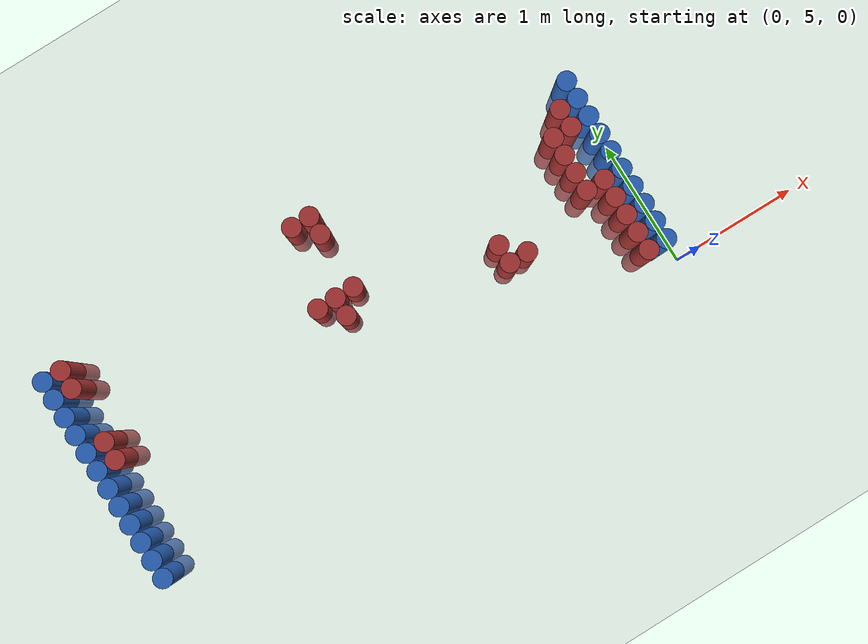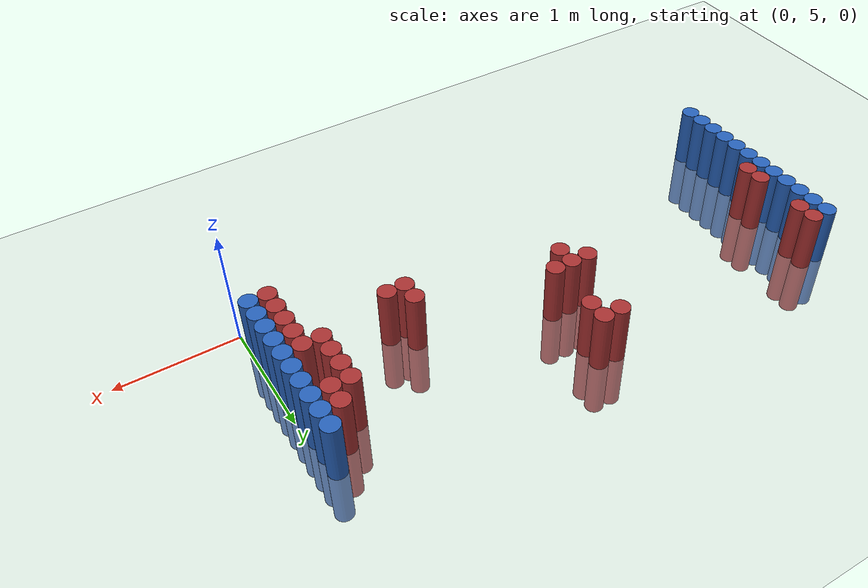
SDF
<sdf version="1.6">
 <world name="default">
  <model name="ground_plane">
   <static>1</static>
   <link name="link">
    <collision name="collision">
     <geometry><plane><normal>0 0 1</normal><size>100 100</size></plane></geometry>
     <surface><friction><ode><mu>100</mu><mu2>50</mu2></ode></friction></surface>
    </collision>
    <visual name="visual">
     <cast_shadows>0</cast_shadows>
     <geometry><plane><normal>0 0 1</normal><size>100 100</size></plane></geometry>
     <material>
      <script><uri>file://media/materials/scripts/gazebo.material</uri><name>Gazebo/Grey</name></script>
     </material>
    </visual>
   </link>
  </model>
  <model name="unit_cylinder_95">
   <static>1</static>
   <pose>-4.425000 5.025000 0.000000 0.000000 0.000000 0.000000</pose>
   <link name="link">
    <inertial>
     <mass>1</mass>
     <inertia><ixx>0.145833</ixx><ixy>0</ixy><ixz>0</ixz><iyy>0.145833</iyy><iyz>0</iyz><izz>0.125</izz></inertia>
    </inertial>
    <collision name="collision">
     <geometry><cylinder><radius>0.075000</radius><length>1</length></cylinder></geometry>
    </collision>
    <visual name="visual">
     <geometry><cylinder><radius>0.075000</radius><length>1</length></cylinder></geometry>
     <material>
      <ambient>0.152000 0.379000 0.720000 1</ambient>
      <diffuse>0.152000 0.379000 0.720000 1</diffuse>
     </material>
     <material>
      <script><name>Gazebo/Grey</name><uri>file://media/materials/scripts/gazebo.material</uri></script>
     </material>
    </visual>
   </link>
  </model>
  <model name="unit_cylinder_96">
   <static>1</static>
   <pose>-4.425000 5.175000 0.000000 0.000000 0.000000 0.000000</pose>
   <link name="link">
    <inertial>
     <mass>1</mass>
     <inertia><ixx>0.145833</ixx><ixy>0</ixy><ixz>0</ixz><iyy>0.145833</iyy><iyz>0</iyz><izz>0.125</izz></inertia>
    </inertial>
    <collision name="collision">
     <geometry><cylinder><radius>0.075000</radius><length>1</length></cylinder></geometry>
    </collision>
    <visual name="visual">
     <geometry><cylinder><radius>0.075000</radius><length>1</length></cylinder></geometry>
     <material>
      <ambient>0.152000 0.379000 0.720000 1</ambient>
      <diffuse>0.152000 0.379000 0.720000 1</diffuse>
     </material>
     <material>
      <script><name>Gazebo/Grey</name><uri>file://media/materials/scripts/gazebo.material</uri></script>
     </material>
    </visual>
   </link>
  </model>
  <model name="unit_cylinder_97">
   <static>1</static>
   <pose>-4.425000 5.325000 0.000000 0.000000 0.000000 0.000000</pose>
   <link name="link">
    <inertial>
     <mass>1</mass>
     <inertia><ixx>0.145833</ixx><ixy>0</ixy><ixz>0</ixz><iyy>0.145833</iyy><iyz>0</iyz><izz>0.125</izz></inertia>
    </inertial>
    <collision name="collision">
     <geometry><cylinder><radius>0.075000</radius><length>1</length></cylinder></geometry>
    </collision>
    <visual name="visual">
     <geometry><cylinder><radius>0.075000</radius><length>1</length></cylinder></geometry>
     <material>
      <ambient>0.152000 0.379000 0.720000 1</ambient>
      <diffuse>0.152000 0.379000 0.720000 1</diffuse>
     </material>
     <material>
      <script><name>Gazebo/Grey</name><uri>file://media/materials/scripts/gazebo.material</uri></script>
     </material>
    </visual>
   </link>
  </model>
  <model name="unit_cylinder_98">
   <static>1</static>
   <pose>-4.425000 5.475000 0.000000 0.000000 0.000000 0.000000</pose>
   <link name="link">
    <inertial>
     <mass>1</mass>
     <inertia><ixx>0.145833</ixx><ixy>0</ixy><ixz>0</ixz><iyy>0.145833</iyy><iyz>0</iyz><izz>0.125</izz></inertia>
    </inertial>
    <collision name="collision">
     <geometry><cylinder><radius>0.075000</radius><length>1</length></cylinder></geometry>
    </collision>
    <visual name="visual">
     <geometry><cylinder><radius>0.075000</radius><length>1</length></cylinder></geometry>
     <material>
      <ambient>0.152000 0.379000 0.720000 1</ambient>
      <diffuse>0.152000 0.379000 0.720000 1</diffuse>
     </material>
     <material>
      <script><name>Gazebo/Grey</name><uri>file://media/materials/scripts/gazebo.material</uri></script>
     </material>
    </visual>
   </link>
  </model>
  <model name="unit_cylinder_99">
   <static>1</static>
   <pose>-4.425000 5.625000 0.000000 0.000000 0.000000 0.000000</pose>
   <link name="link">
    <inertial>
     <mass>1</mass>
     <inertia><ixx>0.145833</ixx><ixy>0</ixy><ixz>0</ixz><iyy>0.145833</iyy><iyz>0</iyz><izz>0.125</izz></inertia>
    </inertial>
    <collision name="collision">
     <geometry><cylinder><radius>0.075000</radius><length>1</length></cylinder></geometry>
    </collision>
    <visual name="visual">
     <geometry><cylinder><radius>0.075000</radius><length>1</length></cylinder></geometry>
     <material>
      <ambient>0.152000 0.379000 0.720000 1</ambient>
      <diffuse>0.152000 0.379000 0.720000 1</diffuse>
     </material>
     <material>
      <script><name>Gazebo/Grey</name><uri>file://media/materials/scripts/gazebo.material</uri></script>
     </material>
    </visual>
   </link>
  </model>
  <model name="unit_cylinder_100">
   <static>1</static>
   <pose>-4.425000 5.775000 0.000000 0.000000 0.000000 0.000000</pose>
   <link name="link">
    <inertial>
     <mass>1</mass>
     <inertia><ixx>0.145833</ixx><ixy>0</ixy><ixz>0</ixz><iyy>0.145833</iyy><iyz>0</iyz><izz>0.125</izz></inertia>
    </inertial>
    <collision name="collision">
     <geometry><cylinder><radius>0.075000</radius><length>1</length></cylinder></geometry>
    </collision>
    <visual name="visual">
     <geometry><cylinder><radius>0.075000</radius><length>1</length></cylinder></geometry>
     <material>
      <ambient>0.152000 0.379000 0.720000 1</ambient>
      <diffuse>0.152000 0.379000 0.720000 1</diffuse>
     </material>
     <material>
      <script><name>Gazebo/Grey</name><uri>file://media/materials/scripts/gazebo.material</uri></script>
     </material>
    </visual>
   </link>
  </model>
  <model name="unit_cylinder_101">
   <static>1</static>
   <pose>-4.425000 5.925000 0.000000 0.000000 0.000000 0.000000</pose>
   <link name="link">
    <inertial>
     <mass>1</mass>
     <inertia><ixx>0.145833</ixx><ixy>0</ixy><ixz>0</ixz><iyy>0.145833</iyy><iyz>0</iyz><izz>0.125</izz></inertia>
    </inertial>
    <collision name="collision">
     <geometry><cylinder><radius>0.075000</radius><length>1</length></cylinder></geometry>
    </collision>
    <visual name="visual">
     <geometry><cylinder><radius>0.075000</radius><length>1</length></cylinder></geometry>
     <material>
      <ambient>0.152000 0.379000 0.720000 1</ambient>
      <diffuse>0.152000 0.379000 0.720000 1</diffuse>
     </material>
     <material>
      <script><name>Gazebo/Grey</name><uri>file://media/materials/scripts/gazebo.material</uri></script>
     </material>
    </visual>
   </link>
  </model>
  <model name="unit_cylinder_102">
   <static>1</static>
   <pose>-4.425000 6.075000 0.000000 0.000000 0.000000 0.000000</pose>
   <link name="link">
    <inertial>
     <mass>1</mass>
     <inertia><ixx>0.145833</ixx><ixy>0</ixy><ixz>0</ixz><iyy>0.145833</iyy><iyz>0</iyz><izz>0.125</izz></inertia>
    </inertial>
    <collision name="collision">
     <geometry><cylinder><radius>0.075000</radius><length>1</length></cylinder></geometry>
    </collision>
    <visual name="visual">
     <geometry><cylinder><radius>0.075000</radius><length>1</length></cylinder></geometry>
     <material>
      <ambient>0.152000 0.379000 0.720000 1</ambient>
      <diffuse>0.152000 0.379000 0.720000 1</diffuse>
     </material>
     <material>
      <script><name>Gazebo/Grey</name><uri>file://media/materials/scripts/gazebo.material</uri></script>
     </material>
    </visual>
   </link>
  </model>
  <model name="unit_cylinder_103">
   <static>1</static>
   <pose>-4.425000 6.225000 0.000000 0.000000 0.000000 0.000000</pose>
   <link name="link">
    <inertial>
     <mass>1</mass>
     <inertia><ixx>0.145833</ixx><ixy>0</ixy><ixz>0</ixz><iyy>0.145833</iyy><iyz>0</iyz><izz>0.125</izz></inertia>
    </inertial>
    <collision name="collision">
     <geometry><cylinder><radius>0.075000</radius><length>1</length></cylinder></geometry>
    </collision>
    <visual name="visual">
     <geometry><cylinder><radius>0.075000</radius><length>1</length></cylinder></geometry>
     <material>
      <ambient>0.152000 0.379000 0.720000 1</ambient>
      <diffuse>0.152000 0.379000 0.720000 1</diffuse>
     </material>
     <material>
      <script><name>Gazebo/Grey</name><uri>file://media/materials/scripts/gazebo.material</uri></script>
     </material>
    </visual>
   </link>
  </model>
  <model name="unit_cylinder_104">
   <static>1</static>
   <pose>-4.425000 6.375000 0.000000 0.000000 0.000000 0.000000</pose>
   <link name="link">
    <inertial>
     <mass>1</mass>
     <inertia><ixx>0.145833</ixx><ixy>0</ixy><ixz>0</ixz><iyy>0.145833</iyy><iyz>0</iyz><izz>0.125</izz></inertia>
    </inertial>
    <collision name="collision">
     <geometry><cylinder><radius>0.075000</radius><length>1</length></cylinder></geometry>
    </collision>
    <visual name="visual">
     <geometry><cylinder><radius>0.075000</radius><length>1</length></cylinder></geometry>
     <material>
      <ambient>0.152000 0.379000 0.720000 1</ambient>
      <diffuse>0.152000 0.379000 0.720000 1</diffuse>
     </material>
     <material>
      <script><name>Gazebo/Grey</name><uri>file://media/materials/scripts/gazebo.material</uri></script>
     </material>
    </visual>
   </link>
  </model>
  <model name="unit_cylinder_105">
   <static>1</static>
   <pose>-4.425000 6.525000 0.000000 0.000000 0.000000 0.000000</pose>
   <link name="link">
    <inertial>
     <mass>1</mass>
     <inertia><ixx>0.145833</ixx><ixy>0</ixy><ixz>0</ixz><iyy>0.145833</iyy><iyz>0</iyz><izz>0.125</izz></inertia>
    </inertial>
    <collision name="collision">
     <geometry><cylinder><radius>0.075000</radius><length>1</length></cylinder></geometry>
    </collision>
    <visual name="visual">
     <geometry><cylinder><radius>0.075000</radius><length>1</length></cylinder></geometry>
     <material>
      <ambient>0.152000 0.379000 0.720000 1</ambient>
      <diffuse>0.152000 0.379000 0.720000 1</diffuse>
     </material>
     <material>
      <script><name>Gazebo/Grey</name><uri>file://media/materials/scripts/gazebo.material</uri></script>
     </material>
    </visual>
   </link>
  </model>
  <model name="unit_cylinder_106">
   <static>1</static>
   <pose>-4.425000 6.675000 0.000000 0.000000 0.000000 0.000000</pose>
   <link name="link">
    <inertial>
     <mass>1</mass>
     <inertia><ixx>0.145833</ixx><ixy>0</ixy><ixz>0</ixz><iyy>0.145833</iyy><iyz>0</iyz><izz>0.125</izz></inertia>
    </inertial>
    <collision name="collision">
     <geometry><cylinder><radius>0.075000</radius><length>1</length></cylinder></geometry>
    </collision>
    <visual name="visual">
     <geometry><cylinder><radius>0.075000</radius><length>1</length></cylinder></geometry>
     <material>
      <ambient>0.152000 0.379000 0.720000 1</ambient>
      <diffuse>0.152000 0.379000 0.720000 1</diffuse>
     </material>
     <material>
      <script><name>Gazebo/Grey</name><uri>file://media/materials/scripts/gazebo.material</uri></script>
     </material>
    </visual>
   </link>
  </model>
  <model name="unit_cylinder_126">
   <static>1</static>
   <pose>-4.275000 5.925000 0.000000 0.000000 0.000000 0.000000</pose>
   <link name="link">
    <inertial>
     <mass>1</mass>
     <inertia><ixx>0.145833</ixx><ixy>0</ixy><ixz>0</ixz><iyy>0.145833</iyy><iyz>0</iyz><izz>0.125</izz></inertia>
    </inertial>
    <collision name="collision">
     <geometry><cylinder><radius>0.075000</radius><length>1</length></cylinder></geometry>
    </collision>
    <visual name="visual">
     <geometry><cylinder><radius>0.075000</radius><length>1</length></cylinder></geometry>
     <material>
      <ambient>0.648000 0.192000 0.192000 1</ambient>
      <diffuse>0.648000 0.192000 0.192000 1</diffuse>
     </material>
     <material>
      <script><name>Gazebo/Grey</name><uri>file://media/materials/scripts/gazebo.material</uri></script>
     </material>
    </visual>
   </link>
  </model>
  <model name="unit_cylinder_127">
   <static>1</static>
   <pose>-4.275000 6.075000 0.000000 0.000000 0.000000 0.000000</pose>
   <link name="link">
    <inertial>
     <mass>1</mass>
     <inertia><ixx>0.145833</ixx><ixy>0</ixy><ixz>0</ixz><iyy>0.145833</iyy><iyz>0</iyz><izz>0.125</izz></inertia>
    </inertial>
    <collision name="collision">
     <geometry><cylinder><radius>0.075000</radius><length>1</length></cylinder></geometry>
    </collision>
    <visual name="visual">
     <geometry><cylinder><radius>0.075000</radius><length>1</length></cylinder></geometry>
     <material>
      <ambient>0.648000 0.192000 0.192000 1</ambient>
      <diffuse>0.648000 0.192000 0.192000 1</diffuse>
     </material>
     <material>
      <script><name>Gazebo/Grey</name><uri>file://media/materials/scripts/gazebo.material</uri></script>
     </material>
    </visual>
   </link>
  </model>
  <model name="unit_cylinder_128">
   <static>1</static>
   <pose>-4.275000 6.525000 0.000000 0.000000 0.000000 0.000000</pose>
   <link name="link">
    <inertial>
     <mass>1</mass>
     <inertia><ixx>0.145833</ixx><ixy>0</ixy><ixz>0</ixz><iyy>0.145833</iyy><iyz>0</iyz><izz>0.125</izz></inertia>
    </inertial>
    <collision name="collision">
     <geometry><cylinder><radius>0.075000</radius><length>1</length></cylinder></geometry>
    </collision>
    <visual name="visual">
     <geometry><cylinder><radius>0.075000</radius><length>1</length></cylinder></geometry>
     <material>
      <ambient>0.648000 0.192000 0.192000 1</ambient>
      <diffuse>0.648000 0.192000 0.192000 1</diffuse>
     </material>
     <material>
      <script><name>Gazebo/Grey</name><uri>file://media/materials/scripts/gazebo.material</uri></script>
     </material>
    </visual>
   </link>
  </model>
  <model name="unit_cylinder_129">
   <static>1</static>
   <pose>-4.275000 6.675000 0.000000 0.000000 0.000000 0.000000</pose>
   <link name="link">
    <inertial>
     <mass>1</mass>
     <inertia><ixx>0.145833</ixx><ixy>0</ixy><ixz>0</ixz><iyy>0.145833</iyy><iyz>0</iyz><izz>0.125</izz></inertia>
    </inertial>
    <collision name="collision">
     <geometry><cylinder><radius>0.075000</radius><length>1</length></cylinder></geometry>
    </collision>
    <visual name="visual">
     <geometry><cylinder><radius>0.075000</radius><length>1</length></cylinder></geometry>
     <material>
      <ambient>0.648000 0.192000 0.192000 1</ambient>
      <diffuse>0.648000 0.192000 0.192000 1</diffuse>
     </material>
     <material>
      <script><name>Gazebo/Grey</name><uri>file://media/materials/scripts/gazebo.material</uri></script>
     </material>
    </visual>
   </link>
  </model>
  <model name="unit_cylinder_188">
   <static>1</static>
   <pose>-2.475000 6.075000 0.000000 0.000000 0.000000 0.000000</pose>
   <link name="link">
    <inertial>
     <mass>1</mass>
     <inertia><ixx>0.145833</ixx><ixy>0</ixy><ixz>0</ixz><iyy>0.145833</iyy><iyz>0</iyz><izz>0.125</izz></inertia>
    </inertial>
    <collision name="collision">
     <geometry><cylinder><radius>0.075000</radius><length>1</length></cylinder></geometry>
    </collision>
    <visual name="visual">
     <geometry><cylinder><radius>0.075000</radius><length>1</length></cylinder></geometry>
     <material>
      <ambient>0.648000 0.192000 0.192000 1</ambient>
      <diffuse>0.648000 0.192000 0.192000 1</diffuse>
     </material>
     <material>
      <script><name>Gazebo/Grey</name><uri>file://media/materials/scripts/gazebo.material</uri></script>
     </material>
    </visual>
   </link>
  </model>
  <model name="unit_cylinder_189">
   <static>1</static>
   <pose>-2.325000 5.925000 0.000000 0.000000 0.000000 0.000000</pose>
   <link name="link">
    <inertial>
     <mass>1</mass>
     <inertia><ixx>0.145833</ixx><ixy>0</ixy><ixz>0</ixz><iyy>0.145833</iyy><iyz>0</iyz><izz>0.125</izz></inertia>
    </inertial>
    <collision name="collision">
     <geometry><cylinder><radius>0.075000</radius><length>1</length></cylinder></geometry>
    </collision>
    <visual name="visual">
     <geometry><cylinder><radius>0.075000</radius><length>1</length></cylinder></geometry>
     <material>
      <ambient>0.648000 0.192000 0.192000 1</ambient>
      <diffuse>0.648000 0.192000 0.192000 1</diffuse>
     </material>
     <material>
      <script><name>Gazebo/Grey</name><uri>file://media/materials/scripts/gazebo.material</uri></script>
     </material>
    </visual>
   </link>
  </model>
  <model name="unit_cylinder_190">
   <static>1</static>
   <pose>-2.325000 6.075000 0.000000 0.000000 0.000000 0.000000</pose>
   <link name="link">
    <inertial>
     <mass>1</mass>
     <inertia><ixx>0.145833</ixx><ixy>0</ixy><ixz>0</ixz><iyy>0.145833</iyy><iyz>0</iyz><izz>0.125</izz></inertia>
    </inertial>
    <collision name="collision">
     <geometry><cylinder><radius>0.075000</radius><length>1</length></cylinder></geometry>
    </collision>
    <visual name="visual">
     <geometry><cylinder><radius>0.075000</radius><length>1</length></cylinder></geometry>
     <material>
      <ambient>0.648000 0.192000 0.192000 1</ambient>
      <diffuse>0.648000 0.192000 0.192000 1</diffuse>
     </material>
     <material>
      <script><name>Gazebo/Grey</name><uri>file://media/materials/scripts/gazebo.material</uri></script>
     </material>
    </visual>
   </link>
  </model>
  <model name="unit_cylinder_191">
   <static>1</static>
   <pose>-2.325000 6.675000 0.000000 0.000000 0.000000 0.000000</pose>
   <link name="link">
    <inertial>
     <mass>1</mass>
     <inertia><ixx>0.145833</ixx><ixy>0</ixy><ixz>0</ixz><iyy>0.145833</iyy><iyz>0</iyz><izz>0.125</izz></inertia>
    </inertial>
    <collision name="collision">
     <geometry><cylinder><radius>0.075000</radius><length>1</length></cylinder></geometry>
    </collision>
    <visual name="visual">
     <geometry><cylinder><radius>0.075000</radius><length>1</length></cylinder></geometry>
     <material>
      <ambient>0.648000 0.192000 0.192000 1</ambient>
      <diffuse>0.648000 0.192000 0.192000 1</diffuse>
     </material>
     <material>
      <script><name>Gazebo/Grey</name><uri>file://media/materials/scripts/gazebo.material</uri></script>
     </material>
    </visual>
   </link>
  </model>
  <model name="unit_cylinder_192">
   <static>1</static>
   <pose>-2.175000 6.075000 0.000000 0.000000 0.000000 0.000000</pose>
   <link name="link">
    <inertial>
     <mass>1</mass>
     <inertia><ixx>0.145833</ixx><ixy>0</ixy><ixz>0</ixz><iyy>0.145833</iyy><iyz>0</iyz><izz>0.125</izz></inertia>
    </inertial>
    <collision name="collision">
     <geometry><cylinder><radius>0.075000</radius><length>1</length></cylinder></geometry>
    </collision>
    <visual name="visual">
     <geometry><cylinder><radius>0.075000</radius><length>1</length></cylinder></geometry>
     <material>
      <ambient>0.648000 0.192000 0.192000 1</ambient>
      <diffuse>0.648000 0.192000 0.192000 1</diffuse>
     </material>
     <material>
      <script><name>Gazebo/Grey</name><uri>file://media/materials/scripts/gazebo.material</uri></script>
     </material>
    </visual>
   </link>
  </model>
  <model name="unit_cylinder_193">
   <static>1</static>
   <pose>-2.175000 6.525000 0.000000 0.000000 0.000000 0.000000</pose>
   <link name="link">
    <inertial>
     <mass>1</mass>
     <inertia><ixx>0.145833</ixx><ixy>0</ixy><ixz>0</ixz><iyy>0.145833</iyy><iyz>0</iyz><izz>0.125</izz></inertia>
    </inertial>
    <collision name="collision">
     <geometry><cylinder><radius>0.075000</radius><length>1</length></cylinder></geometry>
    </collision>
    <visual name="visual">
     <geometry><cylinder><radius>0.075000</radius><length>1</length></cylinder></geometry>
     <material>
      <ambient>0.648000 0.192000 0.192000 1</ambient>
      <diffuse>0.648000 0.192000 0.192000 1</diffuse>
     </material>
     <material>
      <script><name>Gazebo/Grey</name><uri>file://media/materials/scripts/gazebo.material</uri></script>
     </material>
    </visual>
   </link>
  </model>
  <model name="unit_cylinder_194">
   <static>1</static>
   <pose>-2.175000 6.675000 0.000000 0.000000 0.000000 0.000000</pose>
   <link name="link">
    <inertial>
     <mass>1</mass>
     <inertia><ixx>0.145833</ixx><ixy>0</ixy><ixz>0</ixz><iyy>0.145833</iyy><iyz>0</iyz><izz>0.125</izz></inertia>
    </inertial>
    <collision name="collision">
     <geometry><cylinder><radius>0.075000</radius><length>1</length></cylinder></geometry>
    </collision>
    <visual name="visual">
     <geometry><cylinder><radius>0.075000</radius><length>1</length></cylinder></geometry>
     <material>
      <ambient>0.648000 0.192000 0.192000 1</ambient>
      <diffuse>0.648000 0.192000 0.192000 1</diffuse>
     </material>
     <material>
      <script><name>Gazebo/Grey</name><uri>file://media/materials/scripts/gazebo.material</uri></script>
     </material>
    </visual>
   </link>
  </model>
  <model name="unit_cylinder_209">
   <static>1</static>
   <pose>-1.125000 5.625000 0.000000 0.000000 0.000000 0.000000</pose>
   <link name="link">
    <inertial>
     <mass>1</mass>
     <inertia><ixx>0.145833</ixx><ixy>0</ixy><ixz>0</ixz><iyy>0.145833</iyy><iyz>0</iyz><izz>0.125</izz></inertia>
    </inertial>
    <collision name="collision">
     <geometry><cylinder><radius>0.075000</radius><length>1</length></cylinder></geometry>
    </collision>
    <visual name="visual">
     <geometry><cylinder><radius>0.075000</radius><length>1</length></cylinder></geometry>
     <material>
      <ambient>0.648000 0.192000 0.192000 1</ambient>
      <diffuse>0.648000 0.192000 0.192000 1</diffuse>
     </material>
     <material>
      <script><name>Gazebo/Grey</name><uri>file://media/materials/scripts/gazebo.material</uri></script>
     </material>
    </visual>
   </link>
  </model>
  <model name="unit_cylinder_210">
   <static>1</static>
   <pose>-1.125000 5.775000 0.000000 0.000000 0.000000 0.000000</pose>
   <link name="link">
    <inertial>
     <mass>1</mass>
     <inertia><ixx>0.145833</ixx><ixy>0</ixy><ixz>0</ixz><iyy>0.145833</iyy><iyz>0</iyz><izz>0.125</izz></inertia>
    </inertial>
    <collision name="collision">
     <geometry><cylinder><radius>0.075000</radius><length>1</length></cylinder></geometry>
    </collision>
    <visual name="visual">
     <geometry><cylinder><radius>0.075000</radius><length>1</length></cylinder></geometry>
     <material>
      <ambient>0.648000 0.192000 0.192000 1</ambient>
      <diffuse>0.648000 0.192000 0.192000 1</diffuse>
     </material>
     <material>
      <script><name>Gazebo/Grey</name><uri>file://media/materials/scripts/gazebo.material</uri></script>
     </material>
    </visual>
   </link>
  </model>
  <model name="unit_cylinder_214">
   <static>1</static>
   <pose>-0.975000 5.625000 0.000000 0.000000 0.000000 0.000000</pose>
   <link name="link">
    <inertial>
     <mass>1</mass>
     <inertia><ixx>0.145833</ixx><ixy>0</ixy><ixz>0</ixz><iyy>0.145833</iyy><iyz>0</iyz><izz>0.125</izz></inertia>
    </inertial>
    <collision name="collision">
     <geometry><cylinder><radius>0.075000</radius><length>1</length></cylinder></geometry>
    </collision>
    <visual name="visual">
     <geometry><cylinder><radius>0.075000</radius><length>1</length></cylinder></geometry>
     <material>
      <ambient>0.648000 0.192000 0.192000 1</ambient>
      <diffuse>0.648000 0.192000 0.192000 1</diffuse>
     </material>
     <material>
      <script><name>Gazebo/Grey</name><uri>file://media/materials/scripts/gazebo.material</uri></script>
     </material>
    </visual>
   </link>
  </model>
  <model name="unit_cylinder_227">
   <static>1</static>
   <pose>-0.375000 5.775000 0.000000 0.000000 0.000000 0.000000</pose>
   <link name="link">
    <inertial>
     <mass>1</mass>
     <inertia><ixx>0.145833</ixx><ixy>0</ixy><ixz>0</ixz><iyy>0.145833</iyy><iyz>0</iyz><izz>0.125</izz></inertia>
    </inertial>
    <collision name="collision">
     <geometry><cylinder><radius>0.075000</radius><length>1</length></cylinder></geometry>
    </collision>
    <visual name="visual">
     <geometry><cylinder><radius>0.075000</radius><length>1</length></cylinder></geometry>
     <material>
      <ambient>0.648000 0.192000 0.192000 1</ambient>
      <diffuse>0.648000 0.192000 0.192000 1</diffuse>
     </material>
     <material>
      <script><name>Gazebo/Grey</name><uri>file://media/materials/scripts/gazebo.material</uri></script>
     </material>
    </visual>
   </link>
  </model>
  <model name="unit_cylinder_228">
   <static>1</static>
   <pose>-0.375000 5.925000 0.000000 0.000000 0.000000 0.000000</pose>
   <link name="link">
    <inertial>
     <mass>1</mass>
     <inertia><ixx>0.145833</ixx><ixy>0</ixy><ixz>0</ixz><iyy>0.145833</iyy><iyz>0</iyz><izz>0.125</izz></inertia>
    </inertial>
    <collision name="collision">
     <geometry><cylinder><radius>0.075000</radius><length>1</length></cylinder></geometry>
    </collision>
    <visual name="visual">
     <geometry><cylinder><radius>0.075000</radius><length>1</length></cylinder></geometry>
     <material>
      <ambient>0.648000 0.192000 0.192000 1</ambient>
      <diffuse>0.648000 0.192000 0.192000 1</diffuse>
     </material>
     <material>
      <script><name>Gazebo/Grey</name><uri>file://media/materials/scripts/gazebo.material</uri></script>
     </material>
    </visual>
   </link>
  </model>
  <model name="unit_cylinder_229">
   <static>1</static>
   <pose>-0.375000 6.075000 0.000000 0.000000 0.000000 0.000000</pose>
   <link name="link">
    <inertial>
     <mass>1</mass>
     <inertia><ixx>0.145833</ixx><ixy>0</ixy><ixz>0</ixz><iyy>0.145833</iyy><iyz>0</iyz><izz>0.125</izz></inertia>
    </inertial>
    <collision name="collision">
     <geometry><cylinder><radius>0.075000</radius><length>1</length></cylinder></geometry>
    </collision>
    <visual name="visual">
     <geometry><cylinder><radius>0.075000</radius><length>1</length></cylinder></geometry>
     <material>
      <ambient>0.648000 0.192000 0.192000 1</ambient>
      <diffuse>0.648000 0.192000 0.192000 1</diffuse>
     </material>
     <material>
      <script><name>Gazebo/Grey</name><uri>file://media/materials/scripts/gazebo.material</uri></script>
     </material>
    </visual>
   </link>
  </model>
  <model name="unit_cylinder_230">
   <static>1</static>
   <pose>-0.375000 6.225000 0.000000 0.000000 0.000000 0.000000</pose>
   <link name="link">
    <inertial>
     <mass>1</mass>
     <inertia><ixx>0.145833</ixx><ixy>0</ixy><ixz>0</ixz><iyy>0.145833</iyy><iyz>0</iyz><izz>0.125</izz></inertia>
    </inertial>
    <collision name="collision">
     <geometry><cylinder><radius>0.075000</radius><length>1</length></cylinder></geometry>
    </collision>
    <visual name="visual">
     <geometry><cylinder><radius>0.075000</radius><length>1</length></cylinder></geometry>
     <material>
      <ambient>0.648000 0.192000 0.192000 1</ambient>
      <diffuse>0.648000 0.192000 0.192000 1</diffuse>
     </material>
     <material>
      <script><name>Gazebo/Grey</name><uri>file://media/materials/scripts/gazebo.material</uri></script>
     </material>
    </visual>
   </link>
  </model>
  <model name="unit_cylinder_237">
   <static>1</static>
   <pose>-0.225000 5.175000 0.000000 0.000000 0.000000 0.000000</pose>
   <link name="link">
    <inertial>
     <mass>1</mass>
     <inertia><ixx>0.145833</ixx><ixy>0</ixy><ixz>0</ixz><iyy>0.145833</iyy><iyz>0</iyz><izz>0.125</izz></inertia>
    </inertial>
    <collision name="collision">
     <geometry><cylinder><radius>0.075000</radius><length>1</length></cylinder></geometry>
    </collision>
    <visual name="visual">
     <geometry><cylinder><radius>0.075000</radius><length>1</length></cylinder></geometry>
     <material>
      <ambient>0.648000 0.192000 0.192000 1</ambient>
      <diffuse>0.648000 0.192000 0.192000 1</diffuse>
     </material>
     <material>
      <script><name>Gazebo/Grey</name><uri>file://media/materials/scripts/gazebo.material</uri></script>
     </material>
    </visual>
   </link>
  </model>
  <model name="unit_cylinder_238">
   <static>1</static>
   <pose>-0.225000 5.325000 0.000000 0.000000 0.000000 0.000000</pose>
   <link name="link">
    <inertial>
     <mass>1</mass>
     <inertia><ixx>0.145833</ixx><ixy>0</ixy><ixz>0</ixz><iyy>0.145833</iyy><iyz>0</iyz><izz>0.125</izz></inertia>
    </inertial>
    <collision name="collision">
     <geometry><cylinder><radius>0.075000</radius><length>1</length></cylinder></geometry>
    </collision>
    <visual name="visual">
     <geometry><cylinder><radius>0.075000</radius><length>1</length></cylinder></geometry>
     <material>
      <ambient>0.648000 0.192000 0.192000 1</ambient>
      <diffuse>0.648000 0.192000 0.192000 1</diffuse>
     </material>
     <material>
      <script><name>Gazebo/Grey</name><uri>file://media/materials/scripts/gazebo.material</uri></script>
     </material>
    </visual>
   </link>
  </model>
  <model name="unit_cylinder_239">
   <static>1</static>
   <pose>-0.225000 5.475000 0.000000 0.000000 0.000000 0.000000</pose>
   <link name="link">
    <inertial>
     <mass>1</mass>
     <inertia><ixx>0.145833</ixx><ixy>0</ixy><ixz>0</ixz><iyy>0.145833</iyy><iyz>0</iyz><izz>0.125</izz></inertia>
    </inertial>
    <collision name="collision">
     <geometry><cylinder><radius>0.075000</radius><length>1</length></cylinder></geometry>
    </collision>
    <visual name="visual">
     <geometry><cylinder><radius>0.075000</radius><length>1</length></cylinder></geometry>
     <material>
      <ambient>0.648000 0.192000 0.192000 1</ambient>
      <diffuse>0.648000 0.192000 0.192000 1</diffuse>
     </material>
     <material>
      <script><name>Gazebo/Grey</name><uri>file://media/materials/scripts/gazebo.material</uri></script>
     </material>
    </visual>
   </link>
  </model>
  <model name="unit_cylinder_240">
   <static>1</static>
   <pose>-0.225000 5.625000 0.000000 0.000000 0.000000 0.000000</pose>
   <link name="link">
    <inertial>
     <mass>1</mass>
     <inertia><ixx>0.145833</ixx><ixy>0</ixy><ixz>0</ixz><iyy>0.145833</iyy><iyz>0</iyz><izz>0.125</izz></inertia>
    </inertial>
    <collision name="collision">
     <geometry><cylinder><radius>0.075000</radius><length>1</length></cylinder></geometry>
    </collision>
    <visual name="visual">
     <geometry><cylinder><radius>0.075000</radius><length>1</length></cylinder></geometry>
     <material>
      <ambient>0.648000 0.192000 0.192000 1</ambient>
      <diffuse>0.648000 0.192000 0.192000 1</diffuse>
     </material>
     <material>
      <script><name>Gazebo/Grey</name><uri>file://media/materials/scripts/gazebo.material</uri></script>
     </material>
    </visual>
   </link>
  </model>
  <model name="unit_cylinder_241">
   <static>1</static>
   <pose>-0.225000 5.775000 0.000000 0.000000 0.000000 0.000000</pose>
   <link name="link">
    <inertial>
     <mass>1</mass>
     <inertia><ixx>0.145833</ixx><ixy>0</ixy><ixz>0</ixz><iyy>0.145833</iyy><iyz>0</iyz><izz>0.125</izz></inertia>
    </inertial>
    <collision name="collision">
     <geometry><cylinder><radius>0.075000</radius><length>1</length></cylinder></geometry>
    </collision>
    <visual name="visual">
     <geometry><cylinder><radius>0.075000</radius><length>1</length></cylinder></geometry>
     <material>
      <ambient>0.648000 0.192000 0.192000 1</ambient>
      <diffuse>0.648000 0.192000 0.192000 1</diffuse>
     </material>
     <material>
      <script><name>Gazebo/Grey</name><uri>file://media/materials/scripts/gazebo.material</uri></script>
     </material>
    </visual>
   </link>
  </model>
  <model name="unit_cylinder_242">
   <static>1</static>
   <pose>-0.225000 6.225000 0.000000 0.000000 0.000000 0.000000</pose>
   <link name="link">
    <inertial>
     <mass>1</mass>
     <inertia><ixx>0.145833</ixx><ixy>0</ixy><ixz>0</ixz><iyy>0.145833</iyy><iyz>0</iyz><izz>0.125</izz></inertia>
    </inertial>
    <collision name="collision">
     <geometry><cylinder><radius>0.075000</radius><length>1</length></cylinder></geometry>
    </collision>
    <visual name="visual">
     <geometry><cylinder><radius>0.075000</radius><length>1</length></cylinder></geometry>
     <material>
      <ambient>0.648000 0.192000 0.192000 1</ambient>
      <diffuse>0.648000 0.192000 0.192000 1</diffuse>
     </material>
     <material>
      <script><name>Gazebo/Grey</name><uri>file://media/materials/scripts/gazebo.material</uri></script>
     </material>
    </visual>
   </link>
  </model>
  <model name="unit_cylinder_243">
   <static>1</static>
   <pose>-0.225000 6.375000 0.000000 0.000000 0.000000 0.000000</pose>
   <link name="link">
    <inertial>
     <mass>1</mass>
     <inertia><ixx>0.145833</ixx><ixy>0</ixy><ixz>0</ixz><iyy>0.145833</iyy><iyz>0</iyz><izz>0.125</izz></inertia>
    </inertial>
    <collision name="collision">
     <geometry><cylinder><radius>0.075000</radius><length>1</length></cylinder></geometry>
    </collision>
    <visual name="visual">
     <geometry><cylinder><radius>0.075000</radius><length>1</length></cylinder></geometry>
     <material>
      <ambient>0.648000 0.192000 0.192000 1</ambient>
      <diffuse>0.648000 0.192000 0.192000 1</diffuse>
     </material>
     <material>
      <script><name>Gazebo/Grey</name><uri>file://media/materials/scripts/gazebo.material</uri></script>
     </material>
    </visual>
   </link>
  </model>
  <model name="unit_cylinder_253">
   <static>1</static>
   <pose>-0.075000 5.175000 0.000000 0.000000 0.000000 0.000000</pose>
   <link name="link">
    <inertial>
     <mass>1</mass>
     <inertia><ixx>0.145833</ixx><ixy>0</ixy><ixz>0</ixz><iyy>0.145833</iyy><iyz>0</iyz><izz>0.125</izz></inertia>
    </inertial>
    <collision name="collision">
     <geometry><cylinder><radius>0.075000</radius><length>1</length></cylinder></geometry>
    </collision>
    <visual name="visual">
     <geometry><cylinder><radius>0.075000</radius><length>1</length></cylinder></geometry>
     <material>
      <ambient>0.152000 0.379000 0.720000 1</ambient>
      <diffuse>0.152000 0.379000 0.720000 1</diffuse>
     </material>
     <material>
      <script><name>Gazebo/Grey</name><uri>file://media/materials/scripts/gazebo.material</uri></script>
     </material>
    </visual>
   </link>
  </model>
  <model name="unit_cylinder_254">
   <static>1</static>
   <pose>-0.075000 5.325000 0.000000 0.000000 0.000000 0.000000</pose>
   <link name="link">
    <inertial>
     <mass>1</mass>
     <inertia><ixx>0.145833</ixx><ixy>0</ixy><ixz>0</ixz><iyy>0.145833</iyy><iyz>0</iyz><izz>0.125</izz></inertia>
    </inertial>
    <collision name="collision">
     <geometry><cylinder><radius>0.075000</radius><length>1</length></cylinder></geometry>
    </collision>
    <visual name="visual">
     <geometry><cylinder><radius>0.075000</radius><length>1</length></cylinder></geometry>
     <material>
      <ambient>0.152000 0.379000 0.720000 1</ambient>
      <diffuse>0.152000 0.379000 0.720000 1</diffuse>
     </material>
     <material>
      <script><name>Gazebo/Grey</name><uri>file://media/materials/scripts/gazebo.material</uri></script>
     </material>
    </visual>
   </link>
  </model>
  <model name="unit_cylinder_255">
   <static>1</static>
   <pose>-0.075000 5.475000 0.000000 0.000000 0.000000 0.000000</pose>
   <link name="link">
    <inertial>
     <mass>1</mass>
     <inertia><ixx>0.145833</ixx><ixy>0</ixy><ixz>0</ixz><iyy>0.145833</iyy><iyz>0</iyz><izz>0.125</izz></inertia>
    </inertial>
    <collision name="collision">
     <geometry><cylinder><radius>0.075000</radius><length>1</length></cylinder></geometry>
    </collision>
    <visual name="visual">
     <geometry><cylinder><radius>0.075000</radius><length>1</length></cylinder></geometry>
     <material>
      <ambient>0.152000 0.379000 0.720000 1</ambient>
      <diffuse>0.152000 0.379000 0.720000 1</diffuse>
     </material>
     <material>
      <script><name>Gazebo/Grey</name><uri>file://media/materials/scripts/gazebo.material</uri></script>
     </material>
    </visual>
   </link>
  </model>
  <model name="unit_cylinder_256">
   <static>1</static>
   <pose>-0.075000 5.625000 0.000000 0.000000 0.000000 0.000000</pose>
   <link name="link">
    <inertial>
     <mass>1</mass>
     <inertia><ixx>0.145833</ixx><ixy>0</ixy><ixz>0</ixz><iyy>0.145833</iyy><iyz>0</iyz><izz>0.125</izz></inertia>
    </inertial>
    <collision name="collision">
     <geometry><cylinder><radius>0.075000</radius><length>1</length></cylinder></geometry>
    </collision>
    <visual name="visual">
     <geometry><cylinder><radius>0.075000</radius><length>1</length></cylinder></geometry>
     <material>
      <ambient>0.152000 0.379000 0.720000 1</ambient>
      <diffuse>0.152000 0.379000 0.720000 1</diffuse>
     </material>
     <material>
      <script><name>Gazebo/Grey</name><uri>file://media/materials/scripts/gazebo.material</uri></script>
     </material>
    </visual>
   </link>
  </model>
  <model name="unit_cylinder_257">
   <static>1</static>
   <pose>-0.075000 5.775000 0.000000 0.000000 0.000000 0.000000</pose>
   <link name="link">
    <inertial>
     <mass>1</mass>
     <inertia><ixx>0.145833</ixx><ixy>0</ixy><ixz>0</ixz><iyy>0.145833</iyy><iyz>0</iyz><izz>0.125</izz></inertia>
    </inertial>
    <collision name="collision">
     <geometry><cylinder><radius>0.075000</radius><length>1</length></cylinder></geometry>
    </collision>
    <visual name="visual">
     <geometry><cylinder><radius>0.075000</radius><length>1</length></cylinder></geometry>
     <material>
      <ambient>0.152000 0.379000 0.720000 1</ambient>
      <diffuse>0.152000 0.379000 0.720000 1</diffuse>
     </material>
     <material>
      <script><name>Gazebo/Grey</name><uri>file://media/materials/scripts/gazebo.material</uri></script>
     </material>
    </visual>
   </link>
  </model>
  <model name="unit_cylinder_258">
   <static>1</static>
   <pose>-0.075000 5.925000 0.000000 0.000000 0.000000 0.000000</pose>
   <link name="link">
    <inertial>
     <mass>1</mass>
     <inertia><ixx>0.145833</ixx><ixy>0</ixy><ixz>0</ixz><iyy>0.145833</iyy><iyz>0</iyz><izz>0.125</izz></inertia>
    </inertial>
    <collision name="collision">
     <geometry><cylinder><radius>0.075000</radius><length>1</length></cylinder></geometry>
    </collision>
    <visual name="visual">
     <geometry><cylinder><radius>0.075000</radius><length>1</length></cylinder></geometry>
     <material>
      <ambient>0.152000 0.379000 0.720000 1</ambient>
      <diffuse>0.152000 0.379000 0.720000 1</diffuse>
     </material>
     <material>
      <script><name>Gazebo/Grey</name><uri>file://media/materials/scripts/gazebo.material</uri></script>
     </material>
    </visual>
   </link>
  </model>
  <model name="unit_cylinder_259">
   <static>1</static>
   <pose>-0.075000 6.075000 0.000000 0.000000 0.000000 0.000000</pose>
   <link name="link">
    <inertial>
     <mass>1</mass>
     <inertia><ixx>0.145833</ixx><ixy>0</ixy><ixz>0</ixz><iyy>0.145833</iyy><iyz>0</iyz><izz>0.125</izz></inertia>
    </inertial>
    <collision name="collision">
     <geometry><cylinder><radius>0.075000</radius><length>1</length></cylinder></geometry>
    </collision>
    <visual name="visual">
     <geometry><cylinder><radius>0.075000</radius><length>1</length></cylinder></geometry>
     <material>
      <ambient>0.152000 0.379000 0.720000 1</ambient>
      <diffuse>0.152000 0.379000 0.720000 1</diffuse>
     </material>
     <material>
      <script><name>Gazebo/Grey</name><uri>file://media/materials/scripts/gazebo.material</uri></script>
     </material>
    </visual>
   </link>
  </model>
  <model name="unit_cylinder_260">
   <static>1</static>
   <pose>-0.075000 6.225000 0.000000 0.000000 0.000000 0.000000</pose>
   <link name="link">
    <inertial>
     <mass>1</mass>
     <inertia><ixx>0.145833</ixx><ixy>0</ixy><ixz>0</ixz><iyy>0.145833</iyy><iyz>0</iyz><izz>0.125</izz></inertia>
    </inertial>
    <collision name="collision">
     <geometry><cylinder><radius>0.075000</radius><length>1</length></cylinder></geometry>
    </collision>
    <visual name="visual">
     <geometry><cylinder><radius>0.075000</radius><length>1</length></cylinder></geometry>
     <material>
      <ambient>0.152000 0.379000 0.720000 1</ambient>
      <diffuse>0.152000 0.379000 0.720000 1</diffuse>
     </material>
     <material>
      <script><name>Gazebo/Grey</name><uri>file://media/materials/scripts/gazebo.material</uri></script>
     </material>
    </visual>
   </link>
  </model>
  <model name="unit_cylinder_261">
   <static>1</static>
   <pose>-0.075000 6.375000 0.000000 0.000000 0.000000 0.000000</pose>
   <link name="link">
    <inertial>
     <mass>1</mass>
     <inertia><ixx>0.145833</ixx><ixy>0</ixy><ixz>0</ixz><iyy>0.145833</iyy><iyz>0</iyz><izz>0.125</izz></inertia>
    </inertial>
    <collision name="collision">
     <geometry><cylinder><radius>0.075000</radius><length>1</length></cylinder></geometry>
    </collision>
    <visual name="visual">
     <geometry><cylinder><radius>0.075000</radius><length>1</length></cylinder></geometry>
     <material>
      <ambient>0.152000 0.379000 0.720000 1</ambient>
      <diffuse>0.152000 0.379000 0.720000 1</diffuse>
     </material>
     <material>
      <script><name>Gazebo/Grey</name><uri>file://media/materials/scripts/gazebo.material</uri></script>
     </material>
    </visual>
   </link>
  </model>
  <model name="unit_cylinder_262">
   <static>1</static>
   <pose>-0.075000 6.525000 0.000000 0.000000 0.000000 0.000000</pose>
   <link name="link">
    <inertial>
     <mass>1</mass>
     <inertia><ixx>0.145833</ixx><ixy>0</ixy><ixz>0</ixz><iyy>0.145833</iyy><iyz>0</iyz><izz>0.125</izz></inertia>
    </inertial>
    <collision name="collision">
     <geometry><cylinder><radius>0.075000</radius><length>1</length></cylinder></geometry>
    </collision>
    <visual name="visual">
     <geometry><cylinder><radius>0.075000</radius><length>1</length></cylinder></geometry>
     <material>
      <ambient>0.152000 0.379000 0.720000 1</ambient>
      <diffuse>0.152000 0.379000 0.720000 1</diffuse>
     </material>
     <material>
      <script><name>Gazebo/Grey</name><uri>file://media/materials/scripts/gazebo.material</uri></script>
     </material>
    </visual>
   </link>
  </model>
 </world>
</sdf>
